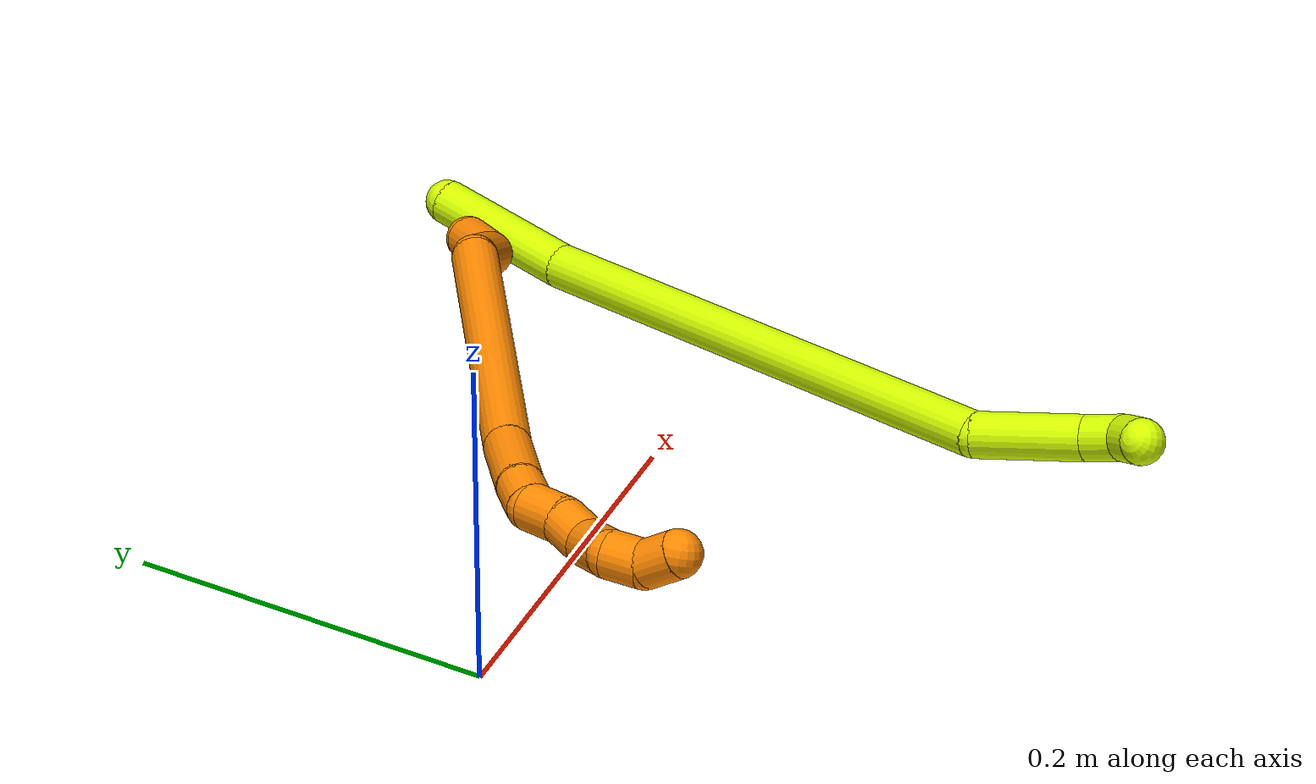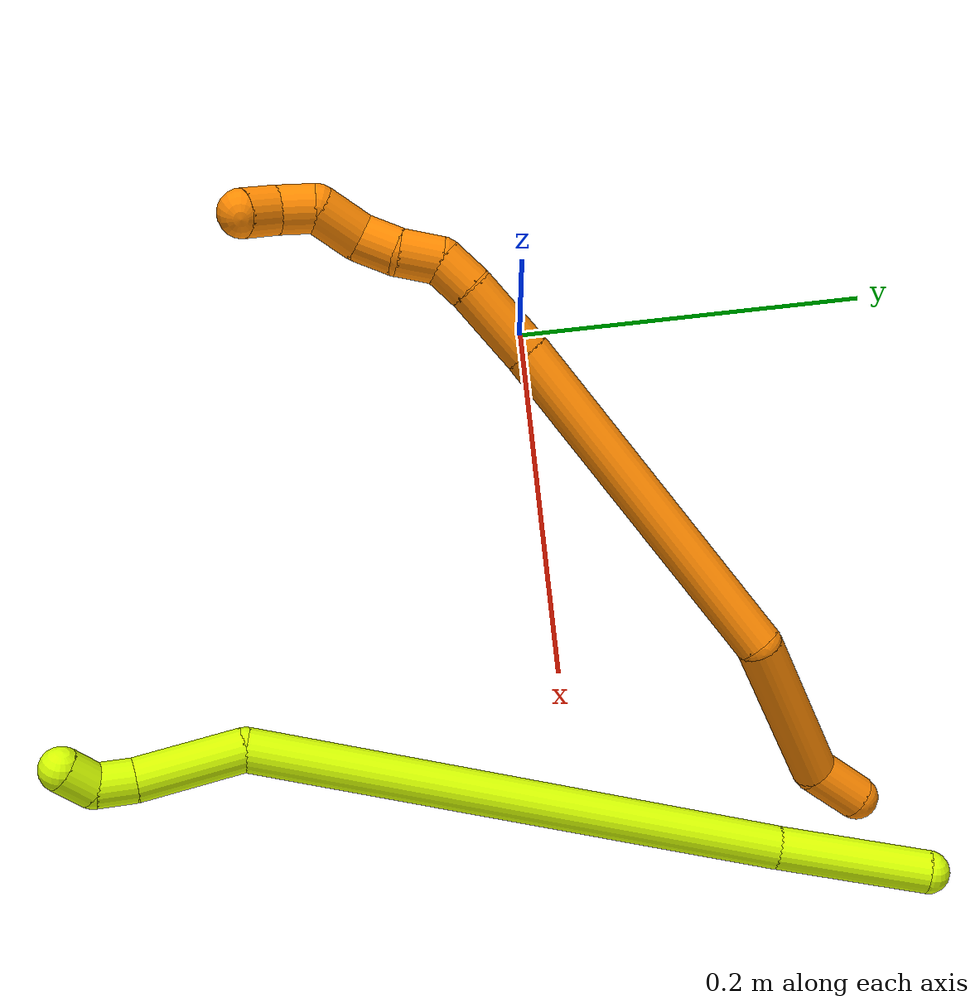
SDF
<sdf version="1.7">
 <world name="default">
  <model name="15">
   <static>0</static>
   <link name="15">
    <collision name="collision-cylinder-e_1_1_4">
     <pose>0.018693 -0.039359 -0.003557 1.66091 0.441829 0.482021</pose>
     <geometry><cylinder><radius>0.0125</radius><length>0.087434</length></cylinder></geometry>
     <surface>
      <friction><ode><mu>1.16</mu><mu2>1.16</mu2><slip1>0</slip1><slip2>0</slip2></ode></friction>
      <contact><ode><kp>1e+06</kp><kd>1</kd><max_vel>0</max_vel><min_depth>0.001</min_depth></ode></contact>
     </surface>
    </collision>
    <visual name="visual-cylinder-e_1_1_4">
     <pose>0.018693 -0.039359 -0.003557 1.66091 0.441829 0.482021</pose>
     <geometry><cylinder><radius>0.0125</radius><length>0.087434</length></cylinder></geometry>
     <material><ambient>0.835294 1 0 1</ambient></material>
    </visual>
    <collision name="collision-cylinder-e_2_4_5">
     <pose>0.119413 -0.209144 0.001398 1.50563 0.560448 0.526732</pose>
     <geometry><cylinder><radius>0.0125</radius><length>0.308623</length></cylinder></geometry>
     <surface>
      <friction><ode><mu>1.16</mu><mu2>1.16</mu2><slip1>0</slip1><slip2>0</slip2></ode></friction>
      <contact><ode><kp>1e+06</kp><kd>1</kd><max_vel>0</max_vel><min_depth>0.001</min_depth></ode></contact>
     </surface>
    </collision>
    <visual name="visual-cylinder-e_2_4_5">
     <pose>0.119413 -0.209144 0.001398 1.50563 0.560448 0.526732</pose>
     <geometry><cylinder><radius>0.0125</radius><length>0.308623</length></cylinder></geometry>
     <material><ambient>0.835294 1 0 1</ambient></material>
    </visual>
    <collision name="collision-cylinder-e_3_5_6">
     <pose>0.224456 -0.358149 0.001848 1.98017 0.849208 1.2066</pose>
     <geometry><cylinder><radius>0.0125</radius><length>0.061315</length></cylinder></geometry>
     <surface>
      <friction><ode><mu>1.16</mu><mu2>1.16</mu2><slip1>0</slip1><slip2>0</slip2></ode></friction>
      <contact><ode><kp>1e+06</kp><kd>1</kd><max_vel>0</max_vel><min_depth>0.001</min_depth></ode></contact>
     </surface>
    </collision>
    <visual name="visual-cylinder-e_3_5_6">
     <pose>0.224456 -0.358149 0.001848 1.98017 0.849208 1.2066</pose>
     <geometry><cylinder><radius>0.0125</radius><length>0.061315</length></cylinder></geometry>
     <material><ambient>0.835294 1 0 1</ambient></material>
    </visual>
    <collision name="collision-cylinder-e_4_6_7">
     <pose>0.256062 -0.383588 -0.006946 1.67734 0.894084 0.980049</pose>
     <geometry><cylinder><radius>0.0125</radius><length>0.022034</length></cylinder></geometry>
     <surface>
      <friction><ode><mu>1.16</mu><mu2>1.16</mu2><slip1>0</slip1><slip2>0</slip2></ode></friction>
      <contact><ode><kp>1e+06</kp><kd>1</kd><max_vel>0</max_vel><min_depth>0.001</min_depth></ode></contact>
     </surface>
    </collision>
    <visual name="visual-cylinder-e_4_6_7">
     <pose>0.256062 -0.383588 -0.006946 1.67734 0.894084 0.980049</pose>
     <geometry><cylinder><radius>0.0125</radius><length>0.022034</length></cylinder></geometry>
     <material><ambient>0.835294 1 0 1</ambient></material>
    </visual>
    <collision name="collision-cylinder-e_5_7_2">
     <pose>0.270177 -0.397217 -0.002233 0.893224 0.566503 0.277</pose>
     <geometry><cylinder><radius>0.0125</radius><length>0.020593</length></cylinder></geometry>
     <surface>
      <friction><ode><mu>1.16</mu><mu2>1.16</mu2><slip1>0</slip1><slip2>0</slip2></ode></friction>
      <contact><ode><kp>1e+06</kp><kd>1</kd><max_vel>0</max_vel><min_depth>0.001</min_depth></ode></contact>
     </surface>
    </collision>
    <visual name="visual-cylinder-e_5_7_2">
     <pose>0.270177 -0.397217 -0.002233 0.893224 0.566503 0.277</pose>
     <geometry><cylinder><radius>0.0125</radius><length>0.020593</length></cylinder></geometry>
     <material><ambient>0.835294 1 0 1</ambient></material>
    </visual>
    <collision name="collision-sphere-2">
     <pose>0.275704 -0.403986 0.003213 0 -0 0</pose>
     <geometry><sphere><radius>0.0125</radius></sphere></geometry>
     <surface>
      <friction><ode><mu>1.16</mu><mu2>1.16</mu2><slip1>0</slip1><slip2>0</slip2></ode></friction>
      <contact><ode><kp>1e+06</kp><kd>1</kd><max_vel>0</max_vel><min_depth>0.001</min_depth></ode></contact>
     </surface>
    </collision>
    <visual name="visual-sphere-2">
     <pose>0.275704 -0.403986 0.003213 0 -0 0</pose>
     <geometry><sphere><radius>0.0125</radius></sphere></geometry>
     <material><ambient>0.835294 1 0 1</ambient></material>
    </visual>
    <collision name="collision-sphere-7">
     <pose>0.264651 -0.390448 -0.00768 0 -0 0</pose>
     <geometry><sphere><radius>0.0125</radius></sphere></geometry>
     <surface>
      <friction><ode><mu>1.16</mu><mu2>1.16</mu2><slip1>0</slip1><slip2>0</slip2></ode></friction>
      <contact><ode><kp>1e+06</kp><kd>1</kd><max_vel>0</max_vel><min_depth>0.001</min_depth></ode></contact>
     </surface>
    </collision>
    <visual name="visual-sphere-7">
     <pose>0.264651 -0.390448 -0.00768 0 -0 0</pose>
     <geometry><sphere><radius>0.0125</radius></sphere></geometry>
     <material><ambient>0.835294 1 0 1</ambient></material>
    </visual>
    <collision name="collision-sphere-6">
     <pose>0.247473 -0.376728 -0.006213 0 -0 0</pose>
     <geometry><sphere><radius>0.0125</radius></sphere></geometry>
     <surface>
      <friction><ode><mu>1.16</mu><mu2>1.16</mu2><slip1>0</slip1><slip2>0</slip2></ode></friction>
      <contact><ode><kp>1e+06</kp><kd>1</kd><max_vel>0</max_vel><min_depth>0.001</min_depth></ode></contact>
     </surface>
    </collision>
    <visual name="visual-sphere-6">
     <pose>0.247473 -0.376728 -0.006213 0 -0 0</pose>
     <geometry><sphere><radius>0.0125</radius></sphere></geometry>
     <material><ambient>0.835294 1 0 1</ambient></material>
    </visual>
    <collision name="collision-sphere-5">
     <pose>0.20144 -0.339571 0.009909 0 -0 0</pose>
     <geometry><sphere><radius>0.0125</radius></sphere></geometry>
     <surface>
      <friction><ode><mu>1.16</mu><mu2>1.16</mu2><slip1>0</slip1><slip2>0</slip2></ode></friction>
      <contact><ode><kp>1e+06</kp><kd>1</kd><max_vel>0</max_vel><min_depth>0.001</min_depth></ode></contact>
     </surface>
    </collision>
    <visual name="visual-sphere-5">
     <pose>0.20144 -0.339571 0.009909 0 -0 0</pose>
     <geometry><sphere><radius>0.0125</radius></sphere></geometry>
     <material><ambient>0.835294 1 0 1</ambient></material>
    </visual>
    <collision name="collision-sphere-1">
     <geometry><sphere><radius>0.0125</radius></sphere></geometry>
     <surface>
      <friction><ode><mu>1.16</mu><mu2>1.16</mu2><slip1>0</slip1><slip2>0</slip2></ode></friction>
      <contact><ode><kp>1e+06</kp><kd>1</kd><max_vel>0</max_vel><min_depth>0.001</min_depth></ode></contact>
     </surface>
    </collision>
    <visual name="visual-sphere-1">
     <geometry><sphere><radius>0.0125</radius></sphere></geometry>
     <material><ambient>0.835294 1 0 1</ambient></material>
    </visual>
    <collision name="collision-sphere-4">
     <pose>0.037386 -0.078717 -0.007113 0 -0 0</pose>
     <geometry><sphere><radius>0.0125</radius></sphere></geometry>
     <surface>
      <friction><ode><mu>1.16</mu><mu2>1.16</mu2><slip1>0</slip1><slip2>0</slip2></ode></friction>
      <contact><ode><kp>1e+06</kp><kd>1</kd><max_vel>0</max_vel><min_depth>0.001</min_depth></ode></contact>
     </surface>
    </collision>
    <visual name="visual-sphere-4">
     <pose>0.037386 -0.078717 -0.007113 0 -0 0</pose>
     <geometry><sphere><radius>0.0125</radius></sphere></geometry>
     <material><ambient>0.835294 1 0 1</ambient></material>
    </visual>
    <inertial>
     <pose>0.126913 -0.21316 7e-05 0 -0 0</pose>
     <mass>0.5</mass>
     <inertia>
      <ixx>0.002966</ixx>
      <ixy>0</ixy>
      <ixz>0</ixz>
      <iyy>0.001871</iyy>
      <iyz>0</iyz>
      <izz>0.000797</izz>
     </inertia>
    </inertial>
   </link>
   <pose>0.336918 0.197625 0.013271 0.456169 -0.817772 -0.958425</pose>
  </model>
  <model name="19">
   <static>0</static>
   <link name="19">
    <collision name="collision-cylinder-e_1_1_4">
     <pose>-0.013144 -0.008409 0.001068 1.44446 -0.998006 -0.895308</pose>
     <geometry><cylinder><radius>0.0125</radius><length>0.03128</length></cylinder></geometry>
     <surface>
      <friction><ode><mu>1.16</mu><mu2>1.16</mu2><slip1>0</slip1><slip2>0</slip2></ode></friction>
      <contact><ode><kp>1e+06</kp><kd>1</kd><max_vel>0</max_vel><min_depth>0.001</min_depth></ode></contact>
     </surface>
    </collision>
    <visual name="visual-cylinder-e_1_1_4">
     <pose>-0.013144 -0.008409 0.001068 1.44446 -0.998006 -0.895308</pose>
     <geometry><cylinder><radius>0.0125</radius><length>0.03128</length></cylinder></geometry>
     <material><ambient>0.996078 0.537255 0 1</ambient></material>
    </visual>
    <collision name="collision-cylinder-e_2_4_5">
     <pose>-0.04957 -0.059461 -0.003525 1.70278 -0.496099 -0.562872</pose>
     <geometry><cylinder><radius>0.0125</radius><length>0.097828</length></cylinder></geometry>
     <surface>
      <friction><ode><mu>1.16</mu><mu2>1.16</mu2><slip1>0</slip1><slip2>0</slip2></ode></friction>
      <contact><ode><kp>1e+06</kp><kd>1</kd><max_vel>0</max_vel><min_depth>0.001</min_depth></ode></contact>
     </surface>
    </collision>
    <visual name="visual-cylinder-e_2_4_5">
     <pose>-0.04957 -0.059461 -0.003525 1.70278 -0.496099 -0.562872</pose>
     <geometry><cylinder><radius>0.0125</radius><length>0.097828</length></cylinder></geometry>
     <material><ambient>0.996078 0.537255 0 1</ambient></material>
    </visual>
    <collision name="collision-cylinder-e_3_5_6">
     <pose>-0.135996 -0.169867 0.023171 1.12531 -0.699168 -0.451963</pose>
     <geometry><cylinder><radius>0.0125</radius><length>0.196222</length></cylinder></geometry>
     <surface>
      <friction><ode><mu>1.16</mu><mu2>1.16</mu2><slip1>0</slip1><slip2>0</slip2></ode></friction>
      <contact><ode><kp>1e+06</kp><kd>1</kd><max_vel>0</max_vel><min_depth>0.001</min_depth></ode></contact>
     </surface>
    </collision>
    <visual name="visual-cylinder-e_3_5_6">
     <pose>-0.135996 -0.169867 0.023171 1.12531 -0.699168 -0.451963</pose>
     <geometry><cylinder><radius>0.0125</radius><length>0.196222</length></cylinder></geometry>
     <material><ambient>0.996078 0.537255 0 1</ambient></material>
    </visual>
    <collision name="collision-cylinder-e_4_6_7">
     <pose>-0.214258 -0.252666 0.060864 1.22975 -0.75853 -0.548733</pose>
     <geometry><cylinder><radius>0.0125</radius><length>0.043963</length></cylinder></geometry>
     <surface>
      <friction><ode><mu>1.16</mu><mu2>1.16</mu2><slip1>0</slip1><slip2>0</slip2></ode></friction>
      <contact><ode><kp>1e+06</kp><kd>1</kd><max_vel>0</max_vel><min_depth>0.001</min_depth></ode></contact>
     </surface>
    </collision>
    <visual name="visual-cylinder-e_4_6_7">
     <pose>-0.214258 -0.252666 0.060864 1.22975 -0.75853 -0.548733</pose>
     <geometry><cylinder><radius>0.0125</radius><length>0.043963</length></cylinder></geometry>
     <material><ambient>0.996078 0.537255 0 1</ambient></material>
    </visual>
    <collision name="collision-cylinder-e_5_7_8">
     <pose>-0.237268 -0.273866 0.069209 1.11685 -0.855193 -0.554741</pose>
     <geometry><cylinder><radius>0.0125</radius><length>0.020908</length></cylinder></geometry>
     <surface>
      <friction><ode><mu>1.16</mu><mu2>1.16</mu2><slip1>0</slip1><slip2>0</slip2></ode></friction>
      <contact><ode><kp>1e+06</kp><kd>1</kd><max_vel>0</max_vel><min_depth>0.001</min_depth></ode></contact>
     </surface>
    </collision>
    <visual name="visual-cylinder-e_5_7_8">
     <pose>-0.237268 -0.273866 0.069209 1.11685 -0.855193 -0.554741</pose>
     <geometry><cylinder><radius>0.0125</radius><length>0.020908</length></cylinder></geometry>
     <material><ambient>0.996078 0.537255 0 1</ambient></material>
    </visual>
    <collision name="collision-cylinder-e_6_8_9">
     <pose>-0.256226 -0.281635 0.072872 1.18276 -1.41544 -1.04301</pose>
     <geometry><cylinder><radius>0.0125</radius><length>0.022408</length></cylinder></geometry>
     <surface>
      <friction><ode><mu>1.16</mu><mu2>1.16</mu2><slip1>0</slip1><slip2>0</slip2></ode></friction>
      <contact><ode><kp>1e+06</kp><kd>1</kd><max_vel>0</max_vel><min_depth>0.001</min_depth></ode></contact>
     </surface>
    </collision>
    <visual name="visual-cylinder-e_6_8_9">
     <pose>-0.256226 -0.281635 0.072872 1.18276 -1.41544 -1.04301</pose>
     <geometry><cylinder><radius>0.0125</radius><length>0.022408</length></cylinder></geometry>
     <material><ambient>0.996078 0.537255 0 1</ambient></material>
    </visual>
    <collision name="collision-cylinder-e_7_9_10">
     <pose>-0.276847 -0.285769 0.076651 0.680766 -1.17258 -0.462072</pose>
     <geometry><cylinder><radius>0.0125</radius><length>0.020726</length></cylinder></geometry>
     <surface>
      <friction><ode><mu>1.16</mu><mu2>1.16</mu2><slip1>0</slip1><slip2>0</slip2></ode></friction>
      <contact><ode><kp>1e+06</kp><kd>1</kd><max_vel>0</max_vel><min_depth>0.001</min_depth></ode></contact>
     </surface>
    </collision>
    <visual name="visual-cylinder-e_7_9_10">
     <pose>-0.276847 -0.285769 0.076651 0.680766 -1.17258 -0.462072</pose>
     <geometry><cylinder><radius>0.0125</radius><length>0.020726</length></cylinder></geometry>
     <material><ambient>0.996078 0.537255 0 1</ambient></material>
    </visual>
    <collision name="collision-cylinder-e_8_10_11">
     <pose>-0.29755 -0.295528 0.079322 1.63311 -0.994679 -1.04784</pose>
     <geometry><cylinder><radius>0.0125</radius><length>0.026595</length></cylinder></geometry>
     <surface>
      <friction><ode><mu>1.16</mu><mu2>1.16</mu2><slip1>0</slip1><slip2>0</slip2></ode></friction>
      <contact><ode><kp>1e+06</kp><kd>1</kd><max_vel>0</max_vel><min_depth>0.001</min_depth></ode></contact>
     </surface>
    </collision>
    <visual name="visual-cylinder-e_8_10_11">
     <pose>-0.29755 -0.295528 0.079322 1.63311 -0.994679 -1.04784</pose>
     <geometry><cylinder><radius>0.0125</radius><length>0.026595</length></cylinder></geometry>
     <material><ambient>0.996078 0.537255 0 1</ambient></material>
    </visual>
    <collision name="collision-cylinder-e_9_11_12">
     <pose>-0.318672 -0.301817 0.079114 -1.31831 -1.47363 1.22534</pose>
     <geometry><cylinder><radius>0.0125</radius><length>0.020035</length></cylinder></geometry>
     <surface>
      <friction><ode><mu>1.16</mu><mu2>1.16</mu2><slip1>0</slip1><slip2>0</slip2></ode></friction>
      <contact><ode><kp>1e+06</kp><kd>1</kd><max_vel>0</max_vel><min_depth>0.001</min_depth></ode></contact>
     </surface>
    </collision>
    <visual name="visual-cylinder-e_9_11_12">
     <pose>-0.318672 -0.301817 0.079114 -1.31831 -1.47363 1.22534</pose>
     <geometry><cylinder><radius>0.0125</radius><length>0.020035</length></cylinder></geometry>
     <material><ambient>0.996078 0.537255 0 1</ambient></material>
    </visual>
    <collision name="collision-cylinder-e_10_12_2">
     <pose>-0.337391 -0.300985 0.074478 3.11918 -1.06197 -3.10342</pose>
     <geometry><cylinder><radius>0.0125</radius><length>0.020036</length></cylinder></geometry>
     <surface>
      <friction><ode><mu>1.16</mu><mu2>1.16</mu2><slip1>0</slip1><slip2>0</slip2></ode></friction>
      <contact><ode><kp>1e+06</kp><kd>1</kd><max_vel>0</max_vel><min_depth>0.001</min_depth></ode></contact>
     </surface>
    </collision>
    <visual name="visual-cylinder-e_10_12_2">
     <pose>-0.337391 -0.300985 0.074478 3.11918 -1.06197 -3.10342</pose>
     <geometry><cylinder><radius>0.0125</radius><length>0.020036</length></cylinder></geometry>
     <material><ambient>0.996078 0.537255 0 1</ambient></material>
    </visual>
    <collision name="collision-sphere-2">
     <pose>-0.34614 -0.301095 0.069599 0 -0 0</pose>
     <geometry><sphere><radius>0.0125</radius></sphere></geometry>
     <surface>
      <friction><ode><mu>1.16</mu><mu2>1.16</mu2><slip1>0</slip1><slip2>0</slip2></ode></friction>
      <contact><ode><kp>1e+06</kp><kd>1</kd><max_vel>0</max_vel><min_depth>0.001</min_depth></ode></contact>
     </surface>
    </collision>
    <visual name="visual-sphere-2">
     <pose>-0.34614 -0.301095 0.069599 0 -0 0</pose>
     <geometry><sphere><radius>0.0125</radius></sphere></geometry>
     <material><ambient>0.996078 0.537255 0 1</ambient></material>
    </visual>
    <collision name="collision-sphere-12">
     <pose>-0.328642 -0.300876 0.079357 0 -0 0</pose>
     <geometry><sphere><radius>0.0125</radius></sphere></geometry>
     <surface>
      <friction><ode><mu>1.16</mu><mu2>1.16</mu2><slip1>0</slip1><slip2>0</slip2></ode></friction>
      <contact><ode><kp>1e+06</kp><kd>1</kd><max_vel>0</max_vel><min_depth>0.001</min_depth></ode></contact>
     </surface>
    </collision>
    <visual name="visual-sphere-12">
     <pose>-0.328642 -0.300876 0.079357 0 -0 0</pose>
     <geometry><sphere><radius>0.0125</radius></sphere></geometry>
     <material><ambient>0.996078 0.537255 0 1</ambient></material>
    </visual>
    <collision name="collision-sphere-11">
     <pose>-0.308701 -0.302758 0.078871 0 -0 0</pose>
     <geometry><sphere><radius>0.0125</radius></sphere></geometry>
     <surface>
      <friction><ode><mu>1.16</mu><mu2>1.16</mu2><slip1>0</slip1><slip2>0</slip2></ode></friction>
      <contact><ode><kp>1e+06</kp><kd>1</kd><max_vel>0</max_vel><min_depth>0.001</min_depth></ode></contact>
     </surface>
    </collision>
    <visual name="visual-sphere-11">
     <pose>-0.308701 -0.302758 0.078871 0 -0 0</pose>
     <geometry><sphere><radius>0.0125</radius></sphere></geometry>
     <material><ambient>0.996078 0.537255 0 1</ambient></material>
    </visual>
    <collision name="collision-sphere-10">
     <pose>-0.286399 -0.288298 0.079774 0 -0 0</pose>
     <geometry><sphere><radius>0.0125</radius></sphere></geometry>
     <surface>
      <friction><ode><mu>1.16</mu><mu2>1.16</mu2><slip1>0</slip1><slip2>0</slip2></ode></friction>
      <contact><ode><kp>1e+06</kp><kd>1</kd><max_vel>0</max_vel><min_depth>0.001</min_depth></ode></contact>
     </surface>
    </collision>
    <visual name="visual-sphere-10">
     <pose>-0.286399 -0.288298 0.079774 0 -0 0</pose>
     <geometry><sphere><radius>0.0125</radius></sphere></geometry>
     <material><ambient>0.996078 0.537255 0 1</ambient></material>
    </visual>
    <collision name="collision-sphere-9">
     <pose>-0.267295 -0.28324 0.073528 0 -0 0</pose>
     <geometry><sphere><radius>0.0125</radius></sphere></geometry>
     <surface>
      <friction><ode><mu>1.16</mu><mu2>1.16</mu2><slip1>0</slip1><slip2>0</slip2></ode></friction>
      <contact><ode><kp>1e+06</kp><kd>1</kd><max_vel>0</max_vel><min_depth>0.001</min_depth></ode></contact>
     </surface>
    </collision>
    <visual name="visual-sphere-9">
     <pose>-0.267295 -0.28324 0.073528 0 -0 0</pose>
     <geometry><sphere><radius>0.0125</radius></sphere></geometry>
     <material><ambient>0.996078 0.537255 0 1</ambient></material>
    </visual>
    <collision name="collision-sphere-4">
     <pose>-0.026287 -0.016818 0.002136 0 -0 0</pose>
     <geometry><sphere><radius>0.0125</radius></sphere></geometry>
     <surface>
      <friction><ode><mu>1.16</mu><mu2>1.16</mu2><slip1>0</slip1><slip2>0</slip2></ode></friction>
      <contact><ode><kp>1e+06</kp><kd>1</kd><max_vel>0</max_vel><min_depth>0.001</min_depth></ode></contact>
     </surface>
    </collision>
    <visual name="visual-sphere-4">
     <pose>-0.026287 -0.016818 0.002136 0 -0 0</pose>
     <geometry><sphere><radius>0.0125</radius></sphere></geometry>
     <material><ambient>0.996078 0.537255 0 1</ambient></material>
    </visual>
    <collision name="collision-sphere-1">
     <geometry><sphere><radius>0.0125</radius></sphere></geometry>
     <surface>
      <friction><ode><mu>1.16</mu><mu2>1.16</mu2><slip1>0</slip1><slip2>0</slip2></ode></friction>
      <contact><ode><kp>1e+06</kp><kd>1</kd><max_vel>0</max_vel><min_depth>0.001</min_depth></ode></contact>
     </surface>
    </collision>
    <visual name="visual-sphere-1">
     <geometry><sphere><radius>0.0125</radius></sphere></geometry>
     <material><ambient>0.996078 0.537255 0 1</ambient></material>
    </visual>
    <collision name="collision-sphere-8">
     <pose>-0.245157 -0.28003 0.072216 0 -0 0</pose>
     <geometry><sphere><radius>0.0125</radius></sphere></geometry>
     <surface>
      <friction><ode><mu>1.16</mu><mu2>1.16</mu2><slip1>0</slip1><slip2>0</slip2></ode></friction>
      <contact><ode><kp>1e+06</kp><kd>1</kd><max_vel>0</max_vel><min_depth>0.001</min_depth></ode></contact>
     </surface>
    </collision>
    <visual name="visual-sphere-8">
     <pose>-0.245157 -0.28003 0.072216 0 -0 0</pose>
     <geometry><sphere><radius>0.0125</radius></sphere></geometry>
     <material><ambient>0.996078 0.537255 0 1</ambient></material>
    </visual>
    <collision name="collision-sphere-5">
     <pose>-0.072853 -0.102104 -0.009186 0 -0 0</pose>
     <geometry><sphere><radius>0.0125</radius></sphere></geometry>
     <surface>
      <friction><ode><mu>1.16</mu><mu2>1.16</mu2><slip1>0</slip1><slip2>0</slip2></ode></friction>
      <contact><ode><kp>1e+06</kp><kd>1</kd><max_vel>0</max_vel><min_depth>0.001</min_depth></ode></contact>
     </surface>
    </collision>
    <visual name="visual-sphere-5">
     <pose>-0.072853 -0.102104 -0.009186 0 -0 0</pose>
     <geometry><sphere><radius>0.0125</radius></sphere></geometry>
     <material><ambient>0.996078 0.537255 0 1</ambient></material>
    </visual>
    <collision name="collision-sphere-6">
     <pose>-0.199138 -0.23763 0.055528 0 -0 0</pose>
     <geometry><sphere><radius>0.0125</radius></sphere></geometry>
     <surface>
      <friction><ode><mu>1.16</mu><mu2>1.16</mu2><slip1>0</slip1><slip2>0</slip2></ode></friction>
      <contact><ode><kp>1e+06</kp><kd>1</kd><max_vel>0</max_vel><min_depth>0.001</min_depth></ode></contact>
     </surface>
    </collision>
    <visual name="visual-sphere-6">
     <pose>-0.199138 -0.23763 0.055528 0 -0 0</pose>
     <geometry><sphere><radius>0.0125</radius></sphere></geometry>
     <material><ambient>0.996078 0.537255 0 1</ambient></material>
    </visual>
    <collision name="collision-sphere-7">
     <pose>-0.229378 -0.267702 0.066201 0 -0 0</pose>
     <geometry><sphere><radius>0.0125</radius></sphere></geometry>
     <surface>
      <friction><ode><mu>1.16</mu><mu2>1.16</mu2><slip1>0</slip1><slip2>0</slip2></ode></friction>
      <contact><ode><kp>1e+06</kp><kd>1</kd><max_vel>0</max_vel><min_depth>0.001</min_depth></ode></contact>
     </surface>
    </collision>
    <visual name="visual-sphere-7">
     <pose>-0.229378 -0.267702 0.066201 0 -0 0</pose>
     <geometry><sphere><radius>0.0125</radius></sphere></geometry>
     <material><ambient>0.996078 0.537255 0 1</ambient></material>
    </visual>
    <inertial>
     <pose>-0.157726 -0.176832 0.033533 0 -0 0</pose>
     <mass>0.5</mass>
     <inertia>
      <ixx>0.000222</ixx>
      <ixy>0</ixy>
      <ixz>0</ixz>
      <iyy>0.000155</iyy>
      <iyz>0</iyz>
      <izz>0.000995</izz>
     </inertia>
    </inertial>
   </link>
   <pose>0.287703 0.157869 0.034226 -2.63367 0.146318 1.4538</pose>
  </model>
 </world>
</sdf>
